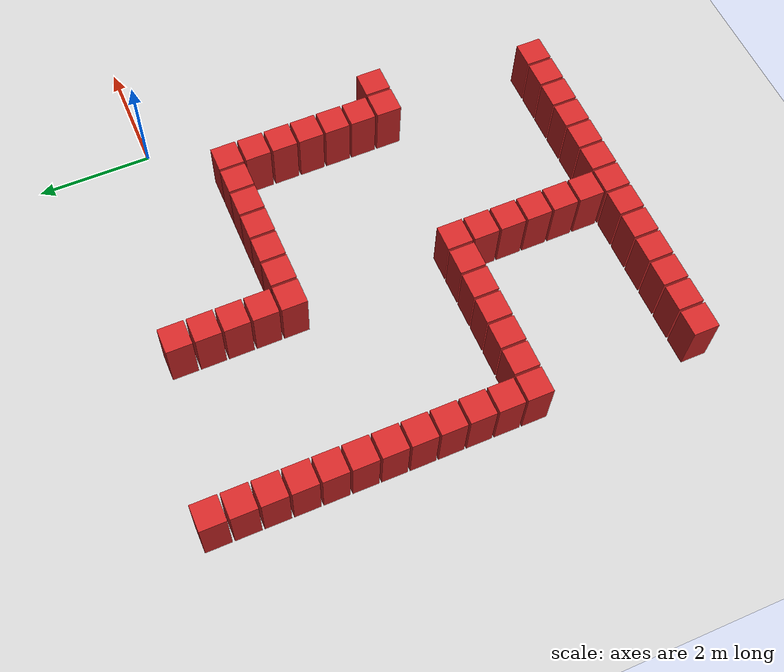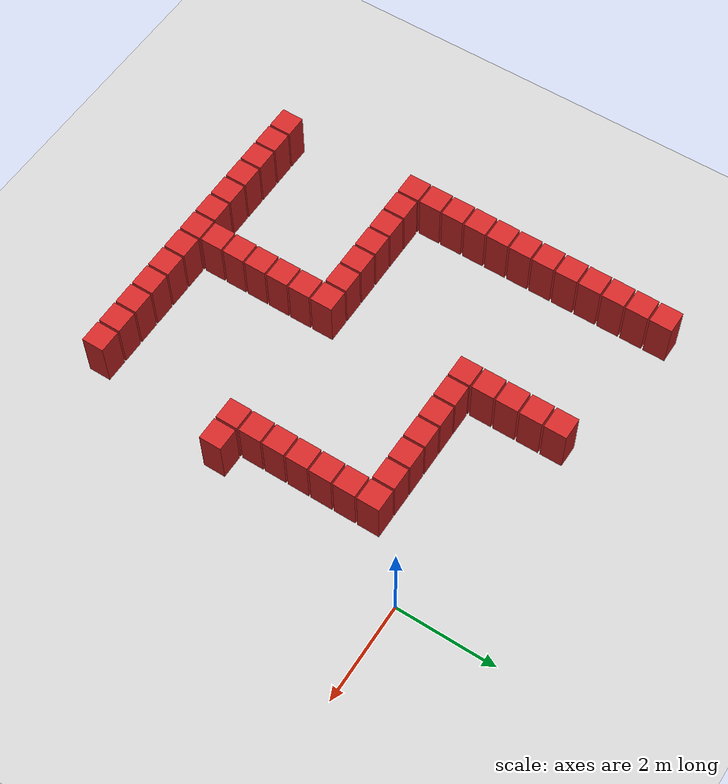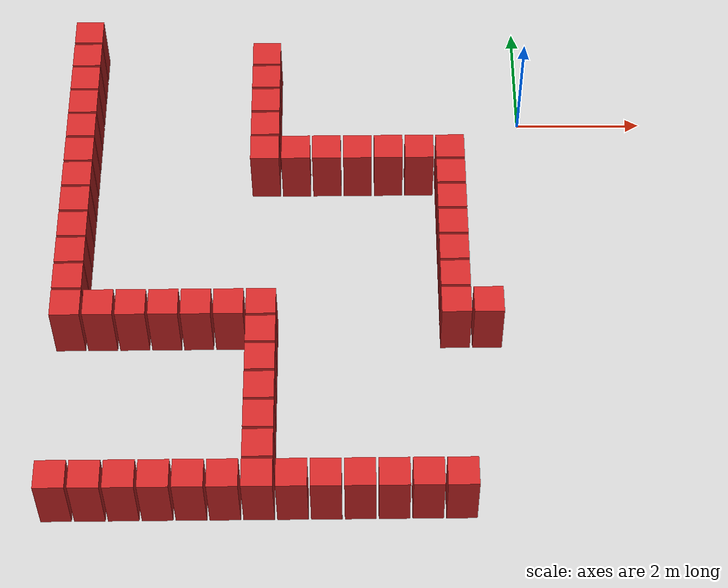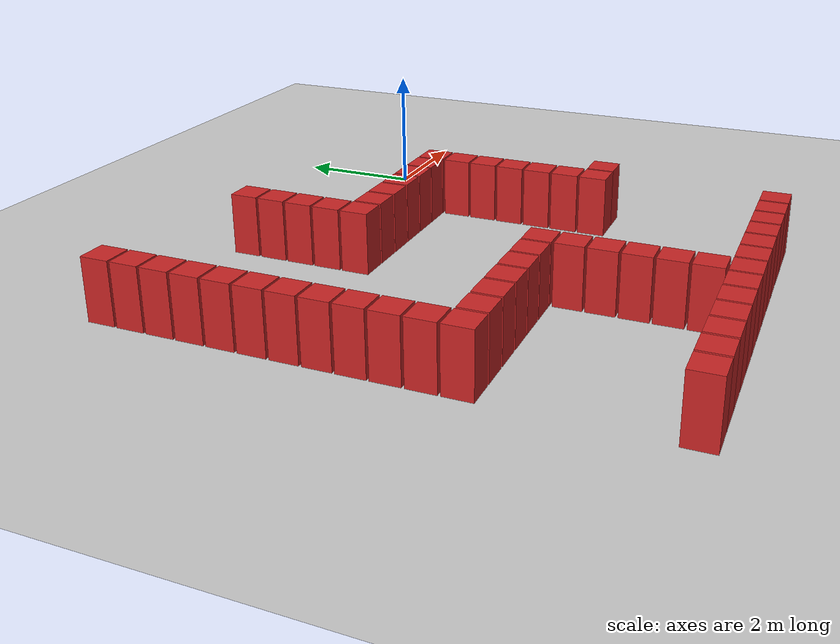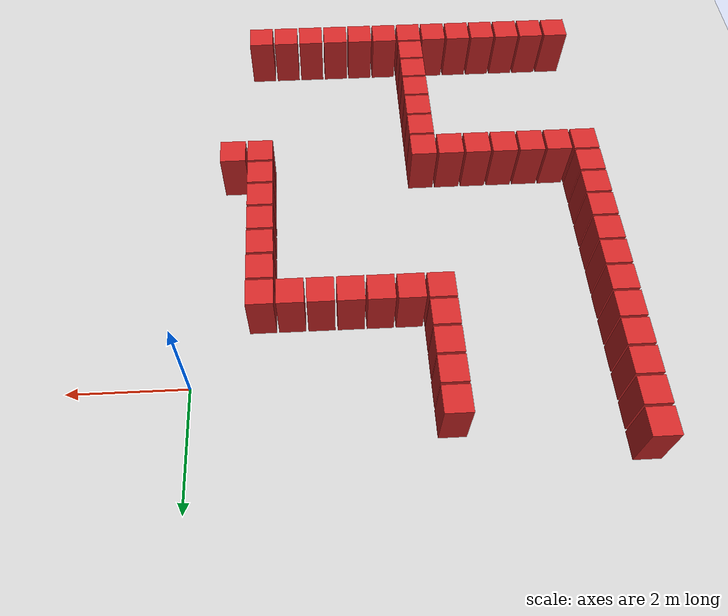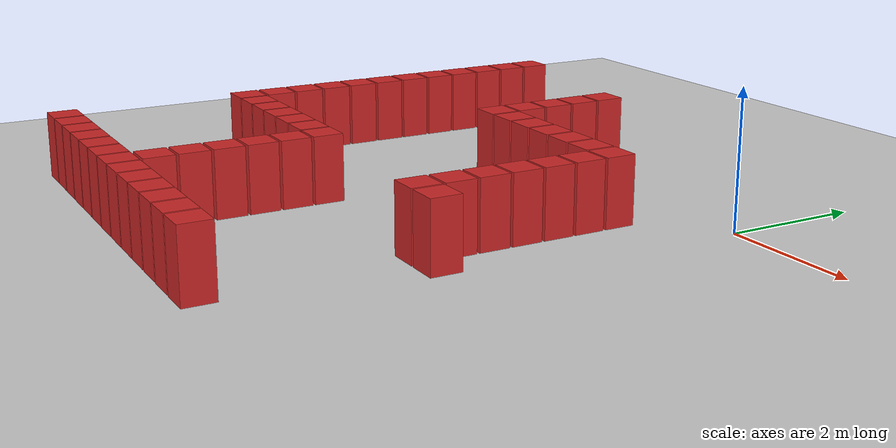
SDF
<sdf version="1.6">
 <world name="default">
  <model name="ground_plane">
   <static>1</static>
   <link name="link">
    <collision name="collision">
     <geometry><plane><normal>0 0 1</normal><size>100 100</size></plane></geometry>
     <surface><friction><ode><mu>100</mu><mu2>50</mu2></ode></friction></surface>
    </collision>
    <visual name="visual">
     <cast_shadows>0</cast_shadows>
     <geometry><plane><normal>0 0 1</normal><size>100 100</size></plane></geometry>
     <material>
      <script><uri>file://media/materials/scripts/gazebo.material</uri><name>Gazebo/Grey</name></script>
     </material>
    </visual>
   </link>
  </model>
  <model name="box_obstacle5">
   <static>0</static>
   <link name="box_obstacle5">
    <pose>0 0 0.1 0 -0 0</pose>
    <inertial>
     <mass>100</mass>
     <inertia>
      <ixx>0.166667</ixx>
      <ixy>0</ixy>
      <ixz>0</ixz>
      <iyy>0.166667</iyy>
      <iyz>0</iyz>
      <izz>0.166667</izz>
     </inertia>
    </inertial>
    <collision name="collision"><geometry><box><size>0.45 0.45 1</size></box></geometry></collision>
    <visual name="visual">
     <geometry><box><size>0.45 0.45 1</size></box></geometry>
     <material>
      <script><name>Gazebo/Red</name><uri>file://media/materials/scripts/gazebo.material</uri></script>
     </material>
    </visual>
   </link>
   <pose>-7.06051 -7.06124 0.4 0 5e-06 0.002247</pose>
  </model>
  <model name="box_obstacle6">
   <static>0</static>
   <link name="box_obstacle6">
    <pose>0 0 0.1 0 -0 0</pose>
    <inertial>
     <mass>100</mass>
     <inertia>
      <ixx>0.166667</ixx>
      <ixy>0</ixy>
      <ixz>0</ixz>
      <iyy>0.166667</iyy>
      <iyz>0</iyz>
      <izz>0.166667</izz>
     </inertia>
    </inertial>
    <collision name="collision"><geometry><box><size>0.45 0.45 1</size></box></geometry></collision>
    <visual name="visual">
     <geometry><box><size>0.45 0.45 1</size></box></geometry>
     <material>
      <script><name>Gazebo/Red</name><uri>file://media/materials/scripts/gazebo.material</uri></script>
     </material>
    </visual>
   </link>
   <pose>-7.06051 -4.12124 0.4 0 5e-06 0.002247</pose>
  </model>
  <model name="box_obstacle7">
   <static>0</static>
   <link name="box_obstacle7">
    <pose>0 0 0.1 0 -0 0</pose>
    <inertial>
     <mass>100</mass>
     <inertia>
      <ixx>0.166667</ixx>
      <ixy>0</ixy>
      <ixz>0</ixz>
      <iyy>0.166667</iyy>
      <iyz>0</iyz>
      <izz>0.166667</izz>
     </inertia>
    </inertial>
    <collision name="collision"><geometry><box><size>0.45 0.45 1</size></box></geometry></collision>
    <visual name="visual">
     <geometry><box><size>0.45 0.45 1</size></box></geometry>
     <material>
      <script><name>Gazebo/Red</name><uri>file://media/materials/scripts/gazebo.material</uri></script>
     </material>
    </visual>
   </link>
   <pose>-7.06051 -3.63124 0.4 0 5e-06 0.002247</pose>
  </model>
  <model name="box_obstacle8">
   <static>0</static>
   <link name="box_obstacle8">
    <pose>0 0 0.1 0 -0 0</pose>
    <inertial>
     <mass>100</mass>
     <inertia>
      <ixx>0.166667</ixx>
      <ixy>0</ixy>
      <ixz>0</ixz>
      <iyy>0.166667</iyy>
      <iyz>0</iyz>
      <izz>0.166667</izz>
     </inertia>
    </inertial>
    <collision name="collision"><geometry><box><size>0.45 0.45 1</size></box></geometry></collision>
    <visual name="visual">
     <geometry><box><size>0.45 0.45 1</size></box></geometry>
     <material>
      <script><name>Gazebo/Red</name><uri>file://media/materials/scripts/gazebo.material</uri></script>
     </material>
    </visual>
   </link>
   <pose>-7.06051 -3.14124 0.4 0 5e-06 0.002247</pose>
  </model>
  <model name="box_obstacle9">
   <static>0</static>
   <link name="box_obstacle9">
    <pose>0 0 0.1 0 -0 0</pose>
    <inertial>
     <mass>100</mass>
     <inertia>
      <ixx>0.166667</ixx>
      <ixy>0</ixy>
      <ixz>0</ixz>
      <iyy>0.166667</iyy>
      <iyz>0</iyz>
      <izz>0.166667</izz>
     </inertia>
    </inertial>
    <collision name="collision"><geometry><box><size>0.45 0.45 1</size></box></geometry></collision>
    <visual name="visual">
     <geometry><box><size>0.45 0.45 1</size></box></geometry>
     <material>
      <script><name>Gazebo/Red</name><uri>file://media/materials/scripts/gazebo.material</uri></script>
     </material>
    </visual>
   </link>
   <pose>-7.06051 -2.65124 0.4 0 5e-06 0.002247</pose>
  </model>
  <model name="box_obstacle10">
   <static>0</static>
   <link name="box_obstacle10">
    <pose>0 0 0.1 0 -0 0</pose>
    <inertial>
     <mass>100</mass>
     <inertia>
      <ixx>0.166667</ixx>
      <ixy>0</ixy>
      <ixz>0</ixz>
      <iyy>0.166667</iyy>
      <iyz>0</iyz>
      <izz>0.166667</izz>
     </inertia>
    </inertial>
    <collision name="collision"><geometry><box><size>0.45 0.45 1</size></box></geometry></collision>
    <visual name="visual">
     <geometry><box><size>0.45 0.45 1</size></box></geometry>
     <material>
      <script><name>Gazebo/Red</name><uri>file://media/materials/scripts/gazebo.material</uri></script>
     </material>
    </visual>
   </link>
   <pose>-7.06051 -2.16124 0.4 0 5e-06 0.002247</pose>
  </model>
  <model name="box_obstacle11">
   <static>0</static>
   <link name="box_obstacle11">
    <pose>0 0 0.1 0 -0 0</pose>
    <inertial>
     <mass>100</mass>
     <inertia>
      <ixx>0.166667</ixx>
      <ixy>0</ixy>
      <ixz>0</ixz>
      <iyy>0.166667</iyy>
      <iyz>0</iyz>
      <izz>0.166667</izz>
     </inertia>
    </inertial>
    <collision name="collision"><geometry><box><size>0.45 0.45 1</size></box></geometry></collision>
    <visual name="visual">
     <geometry><box><size>0.45 0.45 1</size></box></geometry>
     <material>
      <script><name>Gazebo/Red</name><uri>file://media/materials/scripts/gazebo.material</uri></script>
     </material>
    </visual>
   </link>
   <pose>-7.06051 -1.67124 0.4 0 5e-06 0.002247</pose>
  </model>
  <model name="box_obstacle12">
   <static>0</static>
   <link name="box_obstacle12">
    <pose>0 0 0.1 0 -0 0</pose>
    <inertial>
     <mass>100</mass>
     <inertia>
      <ixx>0.166667</ixx>
      <ixy>0</ixy>
      <ixz>0</ixz>
      <iyy>0.166667</iyy>
      <iyz>0</iyz>
      <izz>0.166667</izz>
     </inertia>
    </inertial>
    <collision name="collision"><geometry><box><size>0.45 0.45 1</size></box></geometry></collision>
    <visual name="visual">
     <geometry><box><size>0.45 0.45 1</size></box></geometry>
     <material>
      <script><name>Gazebo/Red</name><uri>file://media/materials/scripts/gazebo.material</uri></script>
     </material>
    </visual>
   </link>
   <pose>-7.06051 -1.18124 0.4 0 5e-06 0.002247</pose>
  </model>
  <model name="box_obstacle13">
   <static>0</static>
   <link name="box_obstacle13">
    <pose>0 0 0.1 0 -0 0</pose>
    <inertial>
     <mass>100</mass>
     <inertia>
      <ixx>0.166667</ixx>
      <ixy>0</ixy>
      <ixz>0</ixz>
      <iyy>0.166667</iyy>
      <iyz>0</iyz>
      <izz>0.166667</izz>
     </inertia>
    </inertial>
    <collision name="collision"><geometry><box><size>0.45 0.45 1</size></box></geometry></collision>
    <visual name="visual">
     <geometry><box><size>0.45 0.45 1</size></box></geometry>
     <material>
      <script><name>Gazebo/Red</name><uri>file://media/materials/scripts/gazebo.material</uri></script>
     </material>
    </visual>
   </link>
   <pose>-7.06051 -0.691242 0.4 0 5e-06 0.002247</pose>
  </model>
  <model name="box_obstacle14">
   <static>0</static>
   <link name="box_obstacle14">
    <pose>0 0 0.1 0 -0 0</pose>
    <inertial>
     <mass>100</mass>
     <inertia>
      <ixx>0.166667</ixx>
      <ixy>0</ixy>
      <ixz>0</ixz>
      <iyy>0.166667</iyy>
      <iyz>0</iyz>
      <izz>0.166667</izz>
     </inertia>
    </inertial>
    <collision name="collision"><geometry><box><size>0.45 0.45 1</size></box></geometry></collision>
    <visual name="visual">
     <geometry><box><size>0.45 0.45 1</size></box></geometry>
     <material>
      <script><name>Gazebo/Red</name><uri>file://media/materials/scripts/gazebo.material</uri></script>
     </material>
    </visual>
   </link>
   <pose>-7.06051 -0.201242 0.4 0 5e-06 0.002247</pose>
  </model>
  <model name="box_obstacle15">
   <static>0</static>
   <link name="box_obstacle15">
    <pose>0 0 0.1 0 -0 0</pose>
    <inertial>
     <mass>100</mass>
     <inertia>
      <ixx>0.166667</ixx>
      <ixy>0</ixy>
      <ixz>0</ixz>
      <iyy>0.166667</iyy>
      <iyz>0</iyz>
      <izz>0.166667</izz>
     </inertia>
    </inertial>
    <collision name="collision"><geometry><box><size>0.45 0.45 1</size></box></geometry></collision>
    <visual name="visual">
     <geometry><box><size>0.45 0.45 1</size></box></geometry>
     <material>
      <script><name>Gazebo/Red</name><uri>file://media/materials/scripts/gazebo.material</uri></script>
     </material>
    </visual>
   </link>
   <pose>-7.06051 0.288758 0.4 0 5e-06 0.002247</pose>
  </model>
  <model name="box_obstacle16">
   <static>0</static>
   <link name="box_obstacle16">
    <pose>0 0 0.1 0 -0 0</pose>
    <inertial>
     <mass>100</mass>
     <inertia>
      <ixx>0.166667</ixx>
      <ixy>0</ixy>
      <ixz>0</ixz>
      <iyy>0.166667</iyy>
      <iyz>0</iyz>
      <izz>0.166667</izz>
     </inertia>
    </inertial>
    <collision name="collision"><geometry><box><size>0.45 0.45 1</size></box></geometry></collision>
    <visual name="visual">
     <geometry><box><size>0.45 0.45 1</size></box></geometry>
     <material>
      <script><name>Gazebo/Red</name><uri>file://media/materials/scripts/gazebo.material</uri></script>
     </material>
    </visual>
   </link>
   <pose>-7.06051 0.778758 0.4 0 5e-06 0.002247</pose>
  </model>
  <model name="box_obstacle17">
   <static>0</static>
   <link name="box_obstacle17">
    <pose>0 0 0.1 0 -0 0</pose>
    <inertial>
     <mass>100</mass>
     <inertia>
      <ixx>0.166667</ixx>
      <ixy>0</ixy>
      <ixz>0</ixz>
      <iyy>0.166667</iyy>
      <iyz>0</iyz>
      <izz>0.166667</izz>
     </inertia>
    </inertial>
    <collision name="collision"><geometry><box><size>0.45 0.45 1</size></box></geometry></collision>
    <visual name="visual">
     <geometry><box><size>0.45 0.45 1</size></box></geometry>
     <material>
      <script><name>Gazebo/Red</name><uri>file://media/materials/scripts/gazebo.material</uri></script>
     </material>
    </visual>
   </link>
   <pose>-7.06051 1.26876 0.4 0 5e-06 0.002247</pose>
  </model>
  <model name="box_obstacle31">
   <static>0</static>
   <link name="box_obstacle31">
    <pose>0 0 0.1 0 -0 0</pose>
    <inertial>
     <mass>100</mass>
     <inertia>
      <ixx>0.166667</ixx>
      <ixy>0</ixy>
      <ixz>0</ixz>
      <iyy>0.166667</iyy>
      <iyz>0</iyz>
      <izz>0.166667</izz>
     </inertia>
    </inertial>
    <collision name="collision"><geometry><box><size>0.45 0.45 1</size></box></geometry></collision>
    <visual name="visual">
     <geometry><box><size>0.45 0.45 1</size></box></geometry>
     <material>
      <script><name>Gazebo/Red</name><uri>file://media/materials/scripts/gazebo.material</uri></script>
     </material>
    </visual>
   </link>
   <pose>-6.57051 -7.06124 0.4 0 5e-06 0.002247</pose>
  </model>
  <model name="box_obstacle32">
   <static>0</static>
   <link name="box_obstacle32">
    <pose>0 0 0.1 0 -0 0</pose>
    <inertial>
     <mass>100</mass>
     <inertia>
      <ixx>0.166667</ixx>
      <ixy>0</ixy>
      <ixz>0</ixz>
      <iyy>0.166667</iyy>
      <iyz>0</iyz>
      <izz>0.166667</izz>
     </inertia>
    </inertial>
    <collision name="collision"><geometry><box><size>0.45 0.45 1</size></box></geometry></collision>
    <visual name="visual">
     <geometry><box><size>0.45 0.45 1</size></box></geometry>
     <material>
      <script><name>Gazebo/Red</name><uri>file://media/materials/scripts/gazebo.material</uri></script>
     </material>
    </visual>
   </link>
   <pose>-6.57051 -4.12124 0.4 0 5e-06 0.002247</pose>
  </model>
  <model name="box_obstacle34">
   <static>0</static>
   <link name="box_obstacle34">
    <pose>0 0 0.1 0 -0 0</pose>
    <inertial>
     <mass>100</mass>
     <inertia>
      <ixx>0.166667</ixx>
      <ixy>0</ixy>
      <ixz>0</ixz>
      <iyy>0.166667</iyy>
      <iyz>0</iyz>
      <izz>0.166667</izz>
     </inertia>
    </inertial>
    <collision name="collision"><geometry><box><size>0.45 0.45 1</size></box></geometry></collision>
    <visual name="visual">
     <geometry><box><size>0.45 0.45 1</size></box></geometry>
     <material>
      <script><name>Gazebo/Red</name><uri>file://media/materials/scripts/gazebo.material</uri></script>
     </material>
    </visual>
   </link>
   <pose>-6.08051 -7.06124 0.4 0 5e-06 0.002247</pose>
  </model>
  <model name="box_obstacle35">
   <static>0</static>
   <link name="box_obstacle35">
    <pose>0 0 0.1 0 -0 0</pose>
    <inertial>
     <mass>100</mass>
     <inertia>
      <ixx>0.166667</ixx>
      <ixy>0</ixy>
      <ixz>0</ixz>
      <iyy>0.166667</iyy>
      <iyz>0</iyz>
      <izz>0.166667</izz>
     </inertia>
    </inertial>
    <collision name="collision"><geometry><box><size>0.45 0.45 1</size></box></geometry></collision>
    <visual name="visual">
     <geometry><box><size>0.45 0.45 1</size></box></geometry>
     <material>
      <script><name>Gazebo/Red</name><uri>file://media/materials/scripts/gazebo.material</uri></script>
     </material>
    </visual>
   </link>
   <pose>-6.08051 -4.12124 0.4 0 5e-06 0.002247</pose>
  </model>
  <model name="box_obstacle37">
   <static>0</static>
   <link name="box_obstacle37">
    <pose>0 0 0.1 0 -0 0</pose>
    <inertial>
     <mass>100</mass>
     <inertia>
      <ixx>0.166667</ixx>
      <ixy>0</ixy>
      <ixz>0</ixz>
      <iyy>0.166667</iyy>
      <iyz>0</iyz>
      <izz>0.166667</izz>
     </inertia>
    </inertial>
    <collision name="collision"><geometry><box><size>0.45 0.45 1</size></box></geometry></collision>
    <visual name="visual">
     <geometry><box><size>0.45 0.45 1</size></box></geometry>
     <material>
      <script><name>Gazebo/Red</name><uri>file://media/materials/scripts/gazebo.material</uri></script>
     </material>
    </visual>
   </link>
   <pose>-5.59051 -7.06124 0.4 0 5e-06 0.002247</pose>
  </model>
  <model name="box_obstacle38">
   <static>0</static>
   <link name="box_obstacle38">
    <pose>0 0 0.1 0 -0 0</pose>
    <inertial>
     <mass>100</mass>
     <inertia>
      <ixx>0.166667</ixx>
      <ixy>0</ixy>
      <ixz>0</ixz>
      <iyy>0.166667</iyy>
      <iyz>0</iyz>
      <izz>0.166667</izz>
     </inertia>
    </inertial>
    <collision name="collision"><geometry><box><size>0.45 0.45 1</size></box></geometry></collision>
    <visual name="visual">
     <geometry><box><size>0.45 0.45 1</size></box></geometry>
     <material>
      <script><name>Gazebo/Red</name><uri>file://media/materials/scripts/gazebo.material</uri></script>
     </material>
    </visual>
   </link>
   <pose>-5.59051 -4.12124 0.4 0 5e-06 0.002247</pose>
  </model>
  <model name="box_obstacle40">
   <static>0</static>
   <link name="box_obstacle40">
    <pose>0 0 0.1 0 -0 0</pose>
    <inertial>
     <mass>100</mass>
     <inertia>
      <ixx>0.166667</ixx>
      <ixy>0</ixy>
      <ixz>0</ixz>
      <iyy>0.166667</iyy>
      <iyz>0</iyz>
      <izz>0.166667</izz>
     </inertia>
    </inertial>
    <collision name="collision"><geometry><box><size>0.45 0.45 1</size></box></geometry></collision>
    <visual name="visual">
     <geometry><box><size>0.45 0.45 1</size></box></geometry>
     <material>
      <script><name>Gazebo/Red</name><uri>file://media/materials/scripts/gazebo.material</uri></script>
     </material>
    </visual>
   </link>
   <pose>-5.10051 -7.06124 0.4 0 5e-06 0.002247</pose>
  </model>
  <model name="box_obstacle41">
   <static>0</static>
   <link name="box_obstacle41">
    <pose>0 0 0.1 0 -0 0</pose>
    <inertial>
     <mass>100</mass>
     <inertia>
      <ixx>0.166667</ixx>
      <ixy>0</ixy>
      <ixz>0</ixz>
      <iyy>0.166667</iyy>
      <iyz>0</iyz>
      <izz>0.166667</izz>
     </inertia>
    </inertial>
    <collision name="collision"><geometry><box><size>0.45 0.45 1</size></box></geometry></collision>
    <visual name="visual">
     <geometry><box><size>0.45 0.45 1</size></box></geometry>
     <material>
      <script><name>Gazebo/Red</name><uri>file://media/materials/scripts/gazebo.material</uri></script>
     </material>
    </visual>
   </link>
   <pose>-5.10051 -4.12124 0.4 0 5e-06 0.002247</pose>
  </model>
  <model name="box_obstacle43">
   <static>0</static>
   <link name="box_obstacle43">
    <pose>0 0 0.1 0 -0 0</pose>
    <inertial>
     <mass>100</mass>
     <inertia>
      <ixx>0.166667</ixx>
      <ixy>0</ixy>
      <ixz>0</ixz>
      <iyy>0.166667</iyy>
      <iyz>0</iyz>
      <izz>0.166667</izz>
     </inertia>
    </inertial>
    <collision name="collision"><geometry><box><size>0.45 0.45 1</size></box></geometry></collision>
    <visual name="visual">
     <geometry><box><size>0.45 0.45 1</size></box></geometry>
     <material>
      <script><name>Gazebo/Red</name><uri>file://media/materials/scripts/gazebo.material</uri></script>
     </material>
    </visual>
   </link>
   <pose>-4.61051 -7.06124 0.4 0 5e-06 0.002247</pose>
  </model>
  <model name="box_obstacle44">
   <static>0</static>
   <link name="box_obstacle44">
    <pose>0 0 0.1 0 -0 0</pose>
    <inertial>
     <mass>100</mass>
     <inertia>
      <ixx>0.166667</ixx>
      <ixy>0</ixy>
      <ixz>0</ixz>
      <iyy>0.166667</iyy>
      <iyz>0</iyz>
      <izz>0.166667</izz>
     </inertia>
    </inertial>
    <collision name="collision"><geometry><box><size>0.45 0.45 1</size></box></geometry></collision>
    <visual name="visual">
     <geometry><box><size>0.45 0.45 1</size></box></geometry>
     <material>
      <script><name>Gazebo/Red</name><uri>file://media/materials/scripts/gazebo.material</uri></script>
     </material>
    </visual>
   </link>
   <pose>-4.61051 -4.12124 0.4 0 5e-06 0.002247</pose>
  </model>
  <model name="box_obstacle46">
   <static>0</static>
   <link name="box_obstacle46">
    <pose>0 0 0.1 0 -0 0</pose>
    <inertial>
     <mass>100</mass>
     <inertia>
      <ixx>0.166667</ixx>
      <ixy>0</ixy>
      <ixz>0</ixz>
      <iyy>0.166667</iyy>
      <iyz>0</iyz>
      <izz>0.166667</izz>
     </inertia>
    </inertial>
    <collision name="collision"><geometry><box><size>0.45 0.45 1</size></box></geometry></collision>
    <visual name="visual">
     <geometry><box><size>0.45 0.45 1</size></box></geometry>
     <material>
      <script><name>Gazebo/Red</name><uri>file://media/materials/scripts/gazebo.material</uri></script>
     </material>
    </visual>
   </link>
   <pose>-4.12051 -7.06124 0.4 0 5e-06 0.002247</pose>
  </model>
  <model name="box_obstacle47">
   <static>0</static>
   <link name="box_obstacle47">
    <pose>0 0 0.1 0 -0 0</pose>
    <inertial>
     <mass>100</mass>
     <inertia>
      <ixx>0.166667</ixx>
      <ixy>0</ixy>
      <ixz>0</ixz>
      <iyy>0.166667</iyy>
      <iyz>0</iyz>
      <izz>0.166667</izz>
     </inertia>
    </inertial>
    <collision name="collision"><geometry><box><size>0.45 0.45 1</size></box></geometry></collision>
    <visual name="visual">
     <geometry><box><size>0.45 0.45 1</size></box></geometry>
     <material>
      <script><name>Gazebo/Red</name><uri>file://media/materials/scripts/gazebo.material</uri></script>
     </material>
    </visual>
   </link>
   <pose>-4.12051 -6.57124 0.4 0 5e-06 0.002247</pose>
  </model>
  <model name="box_obstacle48">
   <static>0</static>
   <link name="box_obstacle48">
    <pose>0 0 0.1 0 -0 0</pose>
    <inertial>
     <mass>100</mass>
     <inertia>
      <ixx>0.166667</ixx>
      <ixy>0</ixy>
      <ixz>0</ixz>
      <iyy>0.166667</iyy>
      <iyz>0</iyz>
      <izz>0.166667</izz>
     </inertia>
    </inertial>
    <collision name="collision"><geometry><box><size>0.45 0.45 1</size></box></geometry></collision>
    <visual name="visual">
     <geometry><box><size>0.45 0.45 1</size></box></geometry>
     <material>
      <script><name>Gazebo/Red</name><uri>file://media/materials/scripts/gazebo.material</uri></script>
     </material>
    </visual>
   </link>
   <pose>-4.12051 -6.08124 0.4 0 5e-06 0.002247</pose>
  </model>
  <model name="box_obstacle49">
   <static>0</static>
   <link name="box_obstacle49">
    <pose>0 0 0.1 0 -0 0</pose>
    <inertial>
     <mass>100</mass>
     <inertia>
      <ixx>0.166667</ixx>
      <ixy>0</ixy>
      <ixz>0</ixz>
      <iyy>0.166667</iyy>
      <iyz>0</iyz>
      <izz>0.166667</izz>
     </inertia>
    </inertial>
    <collision name="collision"><geometry><box><size>0.45 0.45 1</size></box></geometry></collision>
    <visual name="visual">
     <geometry><box><size>0.45 0.45 1</size></box></geometry>
     <material>
      <script><name>Gazebo/Red</name><uri>file://media/materials/scripts/gazebo.material</uri></script>
     </material>
    </visual>
   </link>
   <pose>-4.12051 -5.59124 0.4 0 5e-06 0.002247</pose>
  </model>
  <model name="box_obstacle50">
   <static>0</static>
   <link name="box_obstacle50">
    <pose>0 0 0.1 0 -0 0</pose>
    <inertial>
     <mass>100</mass>
     <inertia>
      <ixx>0.166667</ixx>
      <ixy>0</ixy>
      <ixz>0</ixz>
      <iyy>0.166667</iyy>
      <iyz>0</iyz>
      <izz>0.166667</izz>
     </inertia>
    </inertial>
    <collision name="collision"><geometry><box><size>0.45 0.45 1</size></box></geometry></collision>
    <visual name="visual">
     <geometry><box><size>0.45 0.45 1</size></box></geometry>
     <material>
      <script><name>Gazebo/Red</name><uri>file://media/materials/scripts/gazebo.material</uri></script>
     </material>
    </visual>
   </link>
   <pose>-4.12051 -5.10124 0.4 0 5e-06 0.002247</pose>
  </model>
  <model name="box_obstacle51">
   <static>0</static>
   <link name="box_obstacle51">
    <pose>0 0 0.1 0 -0 0</pose>
    <inertial>
     <mass>100</mass>
     <inertia>
      <ixx>0.166667</ixx>
      <ixy>0</ixy>
      <ixz>0</ixz>
      <iyy>0.166667</iyy>
      <iyz>0</iyz>
      <izz>0.166667</izz>
     </inertia>
    </inertial>
    <collision name="collision"><geometry><box><size>0.45 0.45 1</size></box></geometry></collision>
    <visual name="visual">
     <geometry><box><size>0.45 0.45 1</size></box></geometry>
     <material>
      <script><name>Gazebo/Red</name><uri>file://media/materials/scripts/gazebo.material</uri></script>
     </material>
    </visual>
   </link>
   <pose>-4.12051 -4.61124 0.4 0 5e-06 0.002247</pose>
  </model>
  <model name="box_obstacle52">
   <static>0</static>
   <link name="box_obstacle52">
    <pose>0 0 0.1 0 -0 0</pose>
    <inertial>
     <mass>100</mass>
     <inertia>
      <ixx>0.166667</ixx>
      <ixy>0</ixy>
      <ixz>0</ixz>
      <iyy>0.166667</iyy>
      <iyz>0</iyz>
      <izz>0.166667</izz>
     </inertia>
    </inertial>
    <collision name="collision"><geometry><box><size>0.45 0.45 1</size></box></geometry></collision>
    <visual name="visual">
     <geometry><box><size>0.45 0.45 1</size></box></geometry>
     <material>
      <script><name>Gazebo/Red</name><uri>file://media/materials/scripts/gazebo.material</uri></script>
     </material>
    </visual>
   </link>
   <pose>-4.12051 -4.12124 0.4 0 5e-06 0.002247</pose>
  </model>
  <model name="box_obstacle53">
   <static>0</static>
   <link name="box_obstacle53">
    <pose>0 0 0.1 0 -0 0</pose>
    <inertial>
     <mass>100</mass>
     <inertia>
      <ixx>0.166667</ixx>
      <ixy>0</ixy>
      <ixz>0</ixz>
      <iyy>0.166667</iyy>
      <iyz>0</iyz>
      <izz>0.166667</izz>
     </inertia>
    </inertial>
    <collision name="collision"><geometry><box><size>0.45 0.45 1</size></box></geometry></collision>
    <visual name="visual">
     <geometry><box><size>0.45 0.45 1</size></box></geometry>
     <material>
      <script><name>Gazebo/Red</name><uri>file://media/materials/scripts/gazebo.material</uri></script>
     </material>
    </visual>
   </link>
   <pose>-4.12051 -1.18124 0.4 0 5e-06 0.002247</pose>
  </model>
  <model name="box_obstacle54">
   <static>0</static>
   <link name="box_obstacle54">
    <pose>0 0 0.1 0 -0 0</pose>
    <inertial>
     <mass>100</mass>
     <inertia>
      <ixx>0.166667</ixx>
      <ixy>0</ixy>
      <ixz>0</ixz>
      <iyy>0.166667</iyy>
      <iyz>0</iyz>
      <izz>0.166667</izz>
     </inertia>
    </inertial>
    <collision name="collision"><geometry><box><size>0.45 0.45 1</size></box></geometry></collision>
    <visual name="visual">
     <geometry><box><size>0.45 0.45 1</size></box></geometry>
     <material>
      <script><name>Gazebo/Red</name><uri>file://media/materials/scripts/gazebo.material</uri></script>
     </material>
    </visual>
   </link>
   <pose>-4.12051 -0.691242 0.4 0 5e-06 0.002247</pose>
  </model>
  <model name="box_obstacle55">
   <static>0</static>
   <link name="box_obstacle55">
    <pose>0 0 0.1 0 -0 0</pose>
    <inertial>
     <mass>100</mass>
     <inertia>
      <ixx>0.166667</ixx>
      <ixy>0</ixy>
      <ixz>0</ixz>
      <iyy>0.166667</iyy>
      <iyz>0</iyz>
      <izz>0.166667</izz>
     </inertia>
    </inertial>
    <collision name="collision"><geometry><box><size>0.45 0.45 1</size></box></geometry></collision>
    <visual name="visual">
     <geometry><box><size>0.45 0.45 1</size></box></geometry>
     <material>
      <script><name>Gazebo/Red</name><uri>file://media/materials/scripts/gazebo.material</uri></script>
     </material>
    </visual>
   </link>
   <pose>-4.12051 -0.201242 0.4 0 5e-06 0.002247</pose>
  </model>
  <model name="box_obstacle56">
   <static>0</static>
   <link name="box_obstacle56">
    <pose>0 0 0.1 0 -0 0</pose>
    <inertial>
     <mass>100</mass>
     <inertia>
      <ixx>0.166667</ixx>
      <ixy>0</ixy>
      <ixz>0</ixz>
      <iyy>0.166667</iyy>
      <iyz>0</iyz>
      <izz>0.166667</izz>
     </inertia>
    </inertial>
    <collision name="collision"><geometry><box><size>0.45 0.45 1</size></box></geometry></collision>
    <visual name="visual">
     <geometry><box><size>0.45 0.45 1</size></box></geometry>
     <material>
      <script><name>Gazebo/Red</name><uri>file://media/materials/scripts/gazebo.material</uri></script>
     </material>
    </visual>
   </link>
   <pose>-4.12051 0.288758 0.4 0 5e-06 0.002247</pose>
  </model>
  <model name="box_obstacle57">
   <static>0</static>
   <link name="box_obstacle57">
    <pose>0 0 0.1 0 -0 0</pose>
    <inertial>
     <mass>100</mass>
     <inertia>
      <ixx>0.166667</ixx>
      <ixy>0</ixy>
      <ixz>0</ixz>
      <iyy>0.166667</iyy>
      <iyz>0</iyz>
      <izz>0.166667</izz>
     </inertia>
    </inertial>
    <collision name="collision"><geometry><box><size>0.45 0.45 1</size></box></geometry></collision>
    <visual name="visual">
     <geometry><box><size>0.45 0.45 1</size></box></geometry>
     <material>
      <script><name>Gazebo/Red</name><uri>file://media/materials/scripts/gazebo.material</uri></script>
     </material>
    </visual>
   </link>
   <pose>-4.12051 0.778758 0.4 0 5e-06 0.002247</pose>
  </model>
  <model name="box_obstacle67">
   <static>0</static>
   <link name="box_obstacle67">
    <pose>0 0 0.1 0 -0 0</pose>
    <inertial>
     <mass>100</mass>
     <inertia>
      <ixx>0.166667</ixx>
      <ixy>0</ixy>
      <ixz>0</ixz>
      <iyy>0.166667</iyy>
      <iyz>0</iyz>
      <izz>0.166667</izz>
     </inertia>
    </inertial>
    <collision name="collision"><geometry><box><size>0.45 0.45 1</size></box></geometry></collision>
    <visual name="visual">
     <geometry><box><size>0.45 0.45 1</size></box></geometry>
     <material>
      <script><name>Gazebo/Red</name><uri>file://media/materials/scripts/gazebo.material</uri></script>
     </material>
    </visual>
   </link>
   <pose>-3.63051 -7.06124 0.4 0 5e-06 0.002247</pose>
  </model>
  <model name="box_obstacle68">
   <static>0</static>
   <link name="box_obstacle68">
    <pose>0 0 0.1 0 -0 0</pose>
    <inertial>
     <mass>100</mass>
     <inertia>
      <ixx>0.166667</ixx>
      <ixy>0</ixy>
      <ixz>0</ixz>
      <iyy>0.166667</iyy>
      <iyz>0</iyz>
      <izz>0.166667</izz>
     </inertia>
    </inertial>
    <collision name="collision"><geometry><box><size>0.45 0.45 1</size></box></geometry></collision>
    <visual name="visual">
     <geometry><box><size>0.45 0.45 1</size></box></geometry>
     <material>
      <script><name>Gazebo/Red</name><uri>file://media/materials/scripts/gazebo.material</uri></script>
     </material>
    </visual>
   </link>
   <pose>-3.63051 -1.18124 0.4 0 5e-06 0.002247</pose>
  </model>
  <model name="box_obstacle70">
   <static>0</static>
   <link name="box_obstacle70">
    <pose>0 0 0.1 0 -0 0</pose>
    <inertial>
     <mass>100</mass>
     <inertia>
      <ixx>0.166667</ixx>
      <ixy>0</ixy>
      <ixz>0</ixz>
      <iyy>0.166667</iyy>
      <iyz>0</iyz>
      <izz>0.166667</izz>
     </inertia>
    </inertial>
    <collision name="collision"><geometry><box><size>0.45 0.45 1</size></box></geometry></collision>
    <visual name="visual">
     <geometry><box><size>0.45 0.45 1</size></box></geometry>
     <material>
      <script><name>Gazebo/Red</name><uri>file://media/materials/scripts/gazebo.material</uri></script>
     </material>
    </visual>
   </link>
   <pose>-3.14051 -7.06124 0.4 0 5e-06 0.002247</pose>
  </model>
  <model name="box_obstacle71">
   <static>0</static>
   <link name="box_obstacle71">
    <pose>0 0 0.1 0 -0 0</pose>
    <inertial>
     <mass>100</mass>
     <inertia>
      <ixx>0.166667</ixx>
      <ixy>0</ixy>
      <ixz>0</ixz>
      <iyy>0.166667</iyy>
      <iyz>0</iyz>
      <izz>0.166667</izz>
     </inertia>
    </inertial>
    <collision name="collision"><geometry><box><size>0.45 0.45 1</size></box></geometry></collision>
    <visual name="visual">
     <geometry><box><size>0.45 0.45 1</size></box></geometry>
     <material>
      <script><name>Gazebo/Red</name><uri>file://media/materials/scripts/gazebo.material</uri></script>
     </material>
    </visual>
   </link>
   <pose>-3.14051 -1.18124 0.4 0 5e-06 0.002247</pose>
  </model>
  <model name="box_obstacle73">
   <static>0</static>
   <link name="box_obstacle73">
    <pose>0 0 0.1 0 -0 0</pose>
    <inertial>
     <mass>100</mass>
     <inertia>
      <ixx>0.166667</ixx>
      <ixy>0</ixy>
      <ixz>0</ixz>
      <iyy>0.166667</iyy>
      <iyz>0</iyz>
      <izz>0.166667</izz>
     </inertia>
    </inertial>
    <collision name="collision"><geometry><box><size>0.45 0.45 1</size></box></geometry></collision>
    <visual name="visual">
     <geometry><box><size>0.45 0.45 1</size></box></geometry>
     <material>
      <script><name>Gazebo/Red</name><uri>file://media/materials/scripts/gazebo.material</uri></script>
     </material>
    </visual>
   </link>
   <pose>-2.65051 -7.06124 0.4 0 5e-06 0.002247</pose>
  </model>
  <model name="box_obstacle74">
   <static>0</static>
   <link name="box_obstacle74">
    <pose>0 0 0.1 0 -0 0</pose>
    <inertial>
     <mass>100</mass>
     <inertia>
      <ixx>0.166667</ixx>
      <ixy>0</ixy>
      <ixz>0</ixz>
      <iyy>0.166667</iyy>
      <iyz>0</iyz>
      <izz>0.166667</izz>
     </inertia>
    </inertial>
    <collision name="collision"><geometry><box><size>0.45 0.45 1</size></box></geometry></collision>
    <visual name="visual">
     <geometry><box><size>0.45 0.45 1</size></box></geometry>
     <material>
      <script><name>Gazebo/Red</name><uri>file://media/materials/scripts/gazebo.material</uri></script>
     </material>
    </visual>
   </link>
   <pose>-2.65051 -1.18124 0.4 0 5e-06 0.002247</pose>
  </model>
  <model name="box_obstacle76">
   <static>0</static>
   <link name="box_obstacle76">
    <pose>0 0 0.1 0 -0 0</pose>
    <inertial>
     <mass>100</mass>
     <inertia>
      <ixx>0.166667</ixx>
      <ixy>0</ixy>
      <ixz>0</ixz>
      <iyy>0.166667</iyy>
      <iyz>0</iyz>
      <izz>0.166667</izz>
     </inertia>
    </inertial>
    <collision name="collision"><geometry><box><size>0.45 0.45 1</size></box></geometry></collision>
    <visual name="visual">
     <geometry><box><size>0.45 0.45 1</size></box></geometry>
     <material>
      <script><name>Gazebo/Red</name><uri>file://media/materials/scripts/gazebo.material</uri></script>
     </material>
    </visual>
   </link>
   <pose>-2.16051 -7.06124 0.4 0 5e-06 0.002247</pose>
  </model>
  <model name="box_obstacle77">
   <static>0</static>
   <link name="box_obstacle77">
    <pose>0 0 0.1 0 -0 0</pose>
    <inertial>
     <mass>100</mass>
     <inertia>
      <ixx>0.166667</ixx>
      <ixy>0</ixy>
      <ixz>0</ixz>
      <iyy>0.166667</iyy>
      <iyz>0</iyz>
      <izz>0.166667</izz>
     </inertia>
    </inertial>
    <collision name="collision"><geometry><box><size>0.45 0.45 1</size></box></geometry></collision>
    <visual name="visual">
     <geometry><box><size>0.45 0.45 1</size></box></geometry>
     <material>
      <script><name>Gazebo/Red</name><uri>file://media/materials/scripts/gazebo.material</uri></script>
     </material>
    </visual>
   </link>
   <pose>-2.16051 -1.18124 0.4 0 5e-06 0.002247</pose>
  </model>
  <model name="box_obstacle79">
   <static>0</static>
   <link name="box_obstacle79">
    <pose>0 0 0.1 0 -0 0</pose>
    <inertial>
     <mass>100</mass>
     <inertia>
      <ixx>0.166667</ixx>
      <ixy>0</ixy>
      <ixz>0</ixz>
      <iyy>0.166667</iyy>
      <iyz>0</iyz>
      <izz>0.166667</izz>
     </inertia>
    </inertial>
    <collision name="collision"><geometry><box><size>0.45 0.45 1</size></box></geometry></collision>
    <visual name="visual">
     <geometry><box><size>0.45 0.45 1</size></box></geometry>
     <material>
      <script><name>Gazebo/Red</name><uri>file://media/materials/scripts/gazebo.material</uri></script>
     </material>
    </visual>
   </link>
   <pose>-1.67051 -7.06124 0.4 0 5e-06 0.002247</pose>
  </model>
  <model name="box_obstacle80">
   <static>0</static>
   <link name="box_obstacle80">
    <pose>0 0 0.1 0 -0 0</pose>
    <inertial>
     <mass>100</mass>
     <inertia>
      <ixx>0.166667</ixx>
      <ixy>0</ixy>
      <ixz>0</ixz>
      <iyy>0.166667</iyy>
      <iyz>0</iyz>
      <izz>0.166667</izz>
     </inertia>
    </inertial>
    <collision name="collision"><geometry><box><size>0.45 0.45 1</size></box></geometry></collision>
    <visual name="visual">
     <geometry><box><size>0.45 0.45 1</size></box></geometry>
     <material>
      <script><name>Gazebo/Red</name><uri>file://media/materials/scripts/gazebo.material</uri></script>
     </material>
    </visual>
   </link>
   <pose>-1.67051 -1.18124 0.4 0 5e-06 0.002247</pose>
  </model>
  <model name="box_obstacle82">
   <static>0</static>
   <link name="box_obstacle82">
    <pose>0 0 0.1 0 -0 0</pose>
    <inertial>
     <mass>100</mass>
     <inertia>
      <ixx>0.166667</ixx>
      <ixy>0</ixy>
      <ixz>0</ixz>
      <iyy>0.166667</iyy>
      <iyz>0</iyz>
      <izz>0.166667</izz>
     </inertia>
    </inertial>
    <collision name="collision"><geometry><box><size>0.45 0.45 1</size></box></geometry></collision>
    <visual name="visual">
     <geometry><box><size>0.45 0.45 1</size></box></geometry>
     <material>
      <script><name>Gazebo/Red</name><uri>file://media/materials/scripts/gazebo.material</uri></script>
     </material>
    </visual>
   </link>
   <pose>-1.18051 -7.06124 0.4 0 5e-06 0.002247</pose>
  </model>
  <model name="box_obstacle83">
   <static>0</static>
   <link name="box_obstacle83">
    <pose>0 0 0.1 0 -0 0</pose>
    <inertial>
     <mass>100</mass>
     <inertia>
      <ixx>0.166667</ixx>
      <ixy>0</ixy>
      <ixz>0</ixz>
      <iyy>0.166667</iyy>
      <iyz>0</iyz>
      <izz>0.166667</izz>
     </inertia>
    </inertial>
    <collision name="collision"><geometry><box><size>0.45 0.45 1</size></box></geometry></collision>
    <visual name="visual">
     <geometry><box><size>0.45 0.45 1</size></box></geometry>
     <material>
      <script><name>Gazebo/Red</name><uri>file://media/materials/scripts/gazebo.material</uri></script>
     </material>
    </visual>
   </link>
   <pose>-1.18051 -4.12124 0.4 0 5e-06 0.002247</pose>
  </model>
  <model name="box_obstacle84">
   <static>0</static>
   <link name="box_obstacle84">
    <pose>0 0 0.1 0 -0 0</pose>
    <inertial>
     <mass>100</mass>
     <inertia>
      <ixx>0.166667</ixx>
      <ixy>0</ixy>
      <ixz>0</ixz>
      <iyy>0.166667</iyy>
      <iyz>0</iyz>
      <izz>0.166667</izz>
     </inertia>
    </inertial>
    <collision name="collision"><geometry><box><size>0.45 0.45 1</size></box></geometry></collision>
    <visual name="visual">
     <geometry><box><size>0.45 0.45 1</size></box></geometry>
     <material>
      <script><name>Gazebo/Red</name><uri>file://media/materials/scripts/gazebo.material</uri></script>
     </material>
    </visual>
   </link>
   <pose>-1.18051 -3.63124 0.4 0 5e-06 0.002247</pose>
  </model>
  <model name="box_obstacle85">
   <static>0</static>
   <link name="box_obstacle85">
    <pose>0 0 0.1 0 -0 0</pose>
    <inertial>
     <mass>100</mass>
     <inertia>
      <ixx>0.166667</ixx>
      <ixy>0</ixy>
      <ixz>0</ixz>
      <iyy>0.166667</iyy>
      <iyz>0</iyz>
      <izz>0.166667</izz>
     </inertia>
    </inertial>
    <collision name="collision"><geometry><box><size>0.45 0.45 1</size></box></geometry></collision>
    <visual name="visual">
     <geometry><box><size>0.45 0.45 1</size></box></geometry>
     <material>
      <script><name>Gazebo/Red</name><uri>file://media/materials/scripts/gazebo.material</uri></script>
     </material>
    </visual>
   </link>
   <pose>-1.18051 -3.14124 0.4 0 5e-06 0.002247</pose>
  </model>
  <model name="box_obstacle86">
   <static>0</static>
   <link name="box_obstacle86">
    <pose>0 0 0.1 0 -0 0</pose>
    <inertial>
     <mass>100</mass>
     <inertia>
      <ixx>0.166667</ixx>
      <ixy>0</ixy>
      <ixz>0</ixz>
      <iyy>0.166667</iyy>
      <iyz>0</iyz>
      <izz>0.166667</izz>
     </inertia>
    </inertial>
    <collision name="collision"><geometry><box><size>0.45 0.45 1</size></box></geometry></collision>
    <visual name="visual">
     <geometry><box><size>0.45 0.45 1</size></box></geometry>
     <material>
      <script><name>Gazebo/Red</name><uri>file://media/materials/scripts/gazebo.material</uri></script>
     </material>
    </visual>
   </link>
   <pose>-1.18051 -2.65124 0.4 0 5e-06 0.002247</pose>
  </model>
  <model name="box_obstacle87">
   <static>0</static>
   <link name="box_obstacle87">
    <pose>0 0 0.1 0 -0 0</pose>
    <inertial>
     <mass>100</mass>
     <inertia>
      <ixx>0.166667</ixx>
      <ixy>0</ixy>
      <ixz>0</ixz>
      <iyy>0.166667</iyy>
      <iyz>0</iyz>
      <izz>0.166667</izz>
     </inertia>
    </inertial>
    <collision name="collision"><geometry><box><size>0.45 0.45 1</size></box></geometry></collision>
    <visual name="visual">
     <geometry><box><size>0.45 0.45 1</size></box></geometry>
     <material>
      <script><name>Gazebo/Red</name><uri>file://media/materials/scripts/gazebo.material</uri></script>
     </material>
    </visual>
   </link>
   <pose>-1.18051 -2.16124 0.4 0 5e-06 0.002247</pose>
  </model>
  <model name="box_obstacle88">
   <static>0</static>
   <link name="box_obstacle88">
    <pose>0 0 0.1 0 -0 0</pose>
    <inertial>
     <mass>100</mass>
     <inertia>
      <ixx>0.166667</ixx>
      <ixy>0</ixy>
      <ixz>0</ixz>
      <iyy>0.166667</iyy>
      <iyz>0</iyz>
      <izz>0.166667</izz>
     </inertia>
    </inertial>
    <collision name="collision"><geometry><box><size>0.45 0.45 1</size></box></geometry></collision>
    <visual name="visual">
     <geometry><box><size>0.45 0.45 1</size></box></geometry>
     <material>
      <script><name>Gazebo/Red</name><uri>file://media/materials/scripts/gazebo.material</uri></script>
     </material>
    </visual>
   </link>
   <pose>-1.18051 -1.67124 0.4 0 5e-06 0.002247</pose>
  </model>
  <model name="box_obstacle89">
   <static>0</static>
   <link name="box_obstacle89">
    <pose>0 0 0.1 0 -0 0</pose>
    <inertial>
     <mass>100</mass>
     <inertia>
      <ixx>0.166667</ixx>
      <ixy>0</ixy>
      <ixz>0</ixz>
      <iyy>0.166667</iyy>
      <iyz>0</iyz>
      <izz>0.166667</izz>
     </inertia>
    </inertial>
    <collision name="collision"><geometry><box><size>0.45 0.45 1</size></box></geometry></collision>
    <visual name="visual">
     <geometry><box><size>0.45 0.45 1</size></box></geometry>
     <material>
      <script><name>Gazebo/Red</name><uri>file://media/materials/scripts/gazebo.material</uri></script>
     </material>
    </visual>
   </link>
   <pose>-1.18051 -1.18124 0.4 0 5e-06 0.002247</pose>
  </model>
  <model name="box_obstacle107">
   <static>0</static>
   <link name="box_obstacle107">
    <pose>0 0 0.1 0 -0 0</pose>
    <inertial>
     <mass>100</mass>
     <inertia>
      <ixx>0.166667</ixx>
      <ixy>0</ixy>
      <ixz>0</ixz>
      <iyy>0.166667</iyy>
      <iyz>0</iyz>
      <izz>0.166667</izz>
     </inertia>
    </inertial>
    <collision name="collision"><geometry><box><size>0.45 0.45 1</size></box></geometry></collision>
    <visual name="visual">
     <geometry><box><size>0.45 0.45 1</size></box></geometry>
     <material>
      <script><name>Gazebo/Red</name><uri>file://media/materials/scripts/gazebo.material</uri></script>
     </material>
    </visual>
   </link>
   <pose>-0.690508 -4.12124 0.4 0 5e-06 0.002247</pose>
  </model>
 </world>
</sdf>
